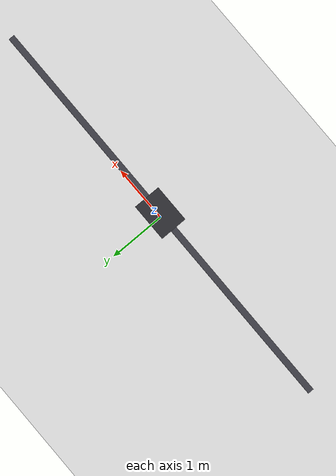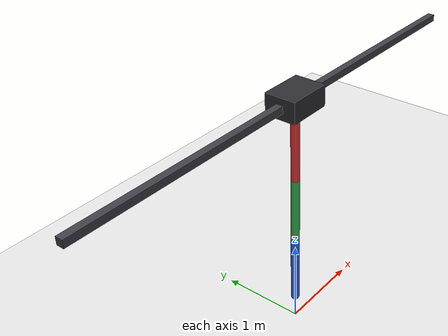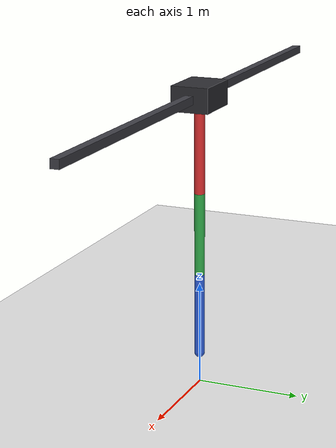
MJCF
<mujoco model="cart triple pendulum">
    <compiler angle="radian" autolimits="true"/>

    <option timestep="0.01" gravity="0 0 -9.81" integrator="RK4"/>

    <visual>
        <headlight ambient="0.35 0.35 0.35" diffuse="0.7 0.7 0.7"/>
    </visual>

    <default>
        <geom type="capsule" size="0.05" mass="0.2"/>
        <site type="sphere" size="0.025"/>
    </default>

    <worldbody>
        <light pos="0 -3 6"/>
        <camera name="side" pos="0 -9 2.7" xyaxes="1 0 0 0 0 1"/>

        <geom
            name="floor"
            type="plane"
            size="6 4 0.1"
            mass="0"
            rgba="0.9 0.9 0.9 1"
        />
        <geom
            name="rail"
            type="box"
            pos="0 0 2.84"
            size="2.8 0.04 0.04"
            mass="0"
            contype="0"
            conaffinity="0"
            rgba="0.25 0.25 0.28 1"
        />

        <body name="cart" pos="0 0 2.7">
            <joint
                name="cart_slide"
                type="slide"
                axis="1 0 0"
                range="-2.5 2.5"
                damping="0.2"
                frictionloss="0.02"
                armature="0.02"
            />
            <geom
                name="cart_body"
                type="box"
                pos="0 0 0.14"
                size="0.25 0.18 0.12"
                mass="1.0"
                rgba="0.18 0.18 0.2 1"
            />
            <site name="cart_pivot" pos="0 0 0" rgba="1 0.8 0.1 1"/>

            <body name="link1" pos="0 0 0">
                <joint
                    name="joint1"
                    type="hinge"
                    axis="0 1 0"
                    damping="0.03"
                    frictionloss="0.002"
                    armature="0.002"
                />
                <geom
                    name="rod1"
                    fromto="0 0 0 0 0 -0.8"
                    rgba="0.9 0.2 0.2 1"
                />
                <site name="link1_endpoint" pos="0 0 -0.8" rgba="1 0.8 0.1 1"/>

                <body name="link2" pos="0 0 -0.8">
                    <joint
                        name="joint2"
                        type="hinge"
                        axis="0 1 0"
                        damping="0.03"
                        frictionloss="0.002"
                        armature="0.002"
                    />
                    <geom
                        name="rod2"
                        fromto="0 0 0 0 0 -0.8"
                        rgba="0.2 0.7 0.3 1"
                    />
                    <site name="link2_endpoint" pos="0 0 -0.8" rgba="1 0.8 0.1 1"/>

                    <body name="link3" pos="0 0 -0.8">
                        <joint
                            name="joint3"
                            type="hinge"
                            axis="0 1 0"
                            damping="0.03"
                            frictionloss="0.002"
                            armature="0.002"
                        />
                        <geom
                            name="rod3"
                            fromto="0 0 0 0 0 -0.8"
                            rgba="0.2 0.4 0.9 1"
                        />
                        <site name="link3_endpoint" pos="0 0 -0.8" rgba="1 0.8 0.1 1"/>
                    </body>
                </body>
            </body>
        </body>
    </worldbody>

    <actuator>
        <!-- All three pendulum hinges are passive. -->
        <motor
            name="cart_motor"
            joint="cart_slide"
            gear="1"
            ctrllimited="true"
            ctrlrange="-10 10"
            forcelimited="true"
            forcerange="-10 10"
        />
    </actuator>
</mujoco>
